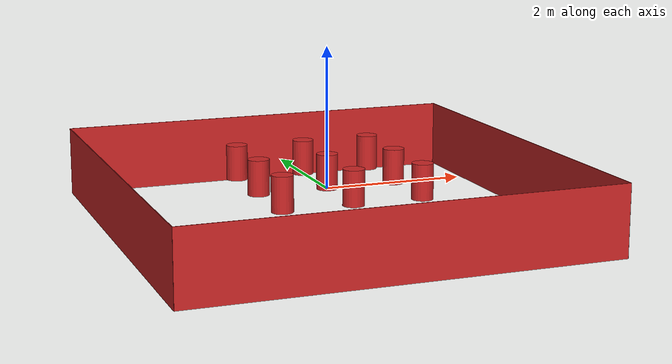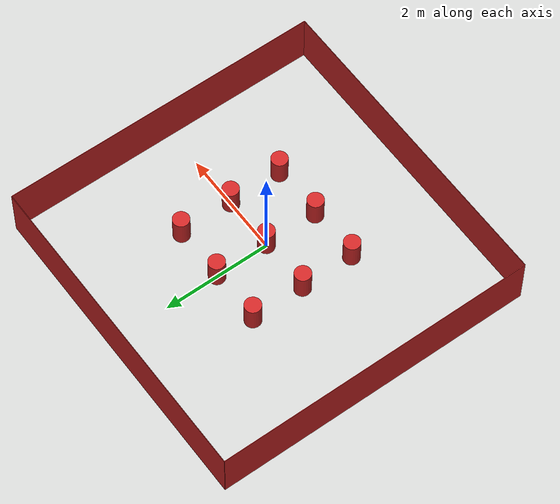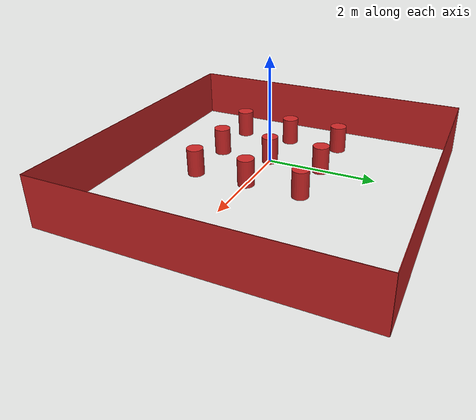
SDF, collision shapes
<sdf version='1.5'>
    <!-- Draw Circle -->
    <model name='ros_symbol'>
      <static>1</static>
      <link name='symbol'>

	<visual name="visual">
	  <geometry>
          <mesh>
            <uri>model://turtlebot3_world/meshes/aws_Refrigerator_01_visual.DAE</uri>
          </mesh>
         </geometry>
         <meta> <layer> 1 </layer></meta>
	</visual>

      	<visual name='goal_1'>
          <pose>2 0 0 0 0 0</pose>
          <geometry>
            <cylinder>
              <radius>0.5</radius>
              <length>0.01</length>
            </cylinder>
          </geometry>
          <material>
            <script>
              <uri>file://media/materials/scripts/gazebo.material</uri>
              <name>Gazebo/Red</name>
            </script>
          </material>
        </visual>

        <visual name='goal_2'>
          <pose>-0.1 -0.7 0 0 0 0</pose>
          <geometry>
            <cylinder>
              <radius>0.08</radius>
              <length>0.01</length>
            </cylinder>
          </geometry>
          <material>
            <script>
              <uri>file://media/materials/scripts/gazebo.material</uri>
              <name>Gazebo/Red</name>
            </script>
          </material>
        </visual>

        <visual name='goal_3'>
          <pose>-1 -1 0 0 0 0</pose>
          <geometry>
            <cylinder>
              <radius>0.08</radius>
              <length>0.01</length>
            </cylinder>
          </geometry>
          <material>
            <script>
              <uri>file://media/materials/scripts/gazebo.material</uri>
              <name>Gazebo/Red</name>
            </script>
          </material>
        </visual>

        <collision name='obs_1'>
          <pose>-1 -1 0.25 0 0 0</pose>
          <geometry>
            <cylinder>
              <radius>0.15</radius>
              <length>0.5</length>
            </cylinder>
          </geometry>
          <max_contacts>10</max_contacts>
          <surface>
            <bounce/>
            <friction>
              <ode/>
            </friction>
            <contact>
              <ode/>
            </contact>
          </surface>
        </collision>

        <visual name='obs_1'>
          <pose>-1 -1 0.25 0 0 0</pose>
          <geometry>
            <cylinder>
              <radius>0.15</radius>
              <length>0.5</length>
            </cylinder>
          </geometry>
          <material>
            <script>
              <uri>file://media/materials/scripts/gazebo.material</uri>
              <name>Gazebo/White</name>
            </script>
          </material>
        </visual>

        <collision name='obs_2'>
          <pose>-1 0 0.25 0 0 0</pose>
          <geometry>
            <cylinder>
              <radius>0.15</radius>
              <length>0.5</length>
            </cylinder>
          </geometry>
          <max_contacts>10</max_contacts>
          <surface>
            <bounce/>
            <friction>
              <ode/>
            </friction>
            <contact>
              <ode/>
            </contact>
          </surface>
        </collision>

        <visual name='obs_2'>
          <pose>-1 0 0.25 0 0 0</pose>
          <geometry>
            <cylinder>
              <radius>0.15</radius>
              <length>0.5</length>
            </cylinder>
          </geometry>
          <material>
            <script>
              <uri>file://media/materials/scripts/gazebo.material</uri>
              <name>Gazebo/White</name>
            </script>
          </material>
        </visual>

        <collision name='obs_3'>
          <pose>-1 1 0.25 0 0 0</pose>
          <geometry>
            <cylinder>
              <radius>0.15</radius>
              <length>0.5</length>
            </cylinder>
          </geometry>
          <max_contacts>10</max_contacts>
          <surface>
            <bounce/>
            <friction>
              <ode/>
            </friction>
            <contact>
              <ode/>
            </contact>
          </surface>
        </collision>

        <visual name='obs_3'>
          <pose>-1 1 0.25 0 0 0</pose>
          <geometry>
            <cylinder>
              <radius>0.15</radius>
              <length>0.5</length>
            </cylinder>
          </geometry>
          <material>
            <script>
              <uri>file://media/materials/scripts/gazebo.material</uri>
              <name>Gazebo/White</name>
            </script>
          </material>
        </visual>

        <collision name='obs_4'>
          <pose>0 -1 0.25 0 0 0</pose>
          <geometry>
            <cylinder>
              <radius>0.15</radius>
              <length>0.5</length>
            </cylinder>
          </geometry>
          <max_contacts>10</max_contacts>
          <surface>
            <bounce/>
            <friction>
              <ode/>
            </friction>
            <contact>
              <ode/>
            </contact>
          </surface>
        </collision>

        <visual name='obs_4'>
          <pose>0 -1 0.25 0 0 0</pose>
          <geometry>
            <cylinder>
              <radius>0.15</radius>
              <length>0.5</length>
            </cylinder>
          </geometry>
          <material>
            <script>
              <uri>file://media/materials/scripts/gazebo.material</uri>
              <name>Gazebo/White</name>
            </script>
          </material>
        </visual>

        <collision name='obs_5'>
          <pose>0 0 0.25 0 0 0</pose>
          <geometry>
            <cylinder>
              <radius>0.15</radius>
              <length>0.5</length>
            </cylinder>
          </geometry>
          <max_contacts>10</max_contacts>
          <surface>
            <bounce/>
            <friction>
              <ode/>
            </friction>
            <contact>
              <ode/>
            </contact>
          </surface>
        </collision>

        <visual name='obs_5'>
          <pose>0 0 0.25 0 0 0</pose>
          <geometry>
            <cylinder>
              <radius>0.15</radius>
              <length>0.5</length>
            </cylinder>
          </geometry>
          <material>
            <script>
              <uri>file://media/materials/scripts/gazebo.material</uri>
              <name>Gazebo/White</name>
            </script>
          </material>
        </visual>

        <collision name='obs_6'>
          <pose>0 1 0.25 0 0 0</pose>
          <geometry>
            <cylinder>
              <radius>0.15</radius>
              <length>0.5</length>
            </cylinder>
          </geometry>
          <max_contacts>10</max_contacts>
          <surface>
            <bounce/>
            <friction>
              <ode/>
            </friction>
            <contact>
              <ode/>
            </contact>
          </surface>
        </collision>

        <visual name='obs_6'>
          <pose>0 1 0.25 0 0 0</pose>
          <geometry>
            <cylinder>
              <radius>0.15</radius>
              <length>0.5</length>
            </cylinder>
          </geometry>
          <material>
            <script>
              <uri>file://media/materials/scripts/gazebo.material</uri>
              <name>Gazebo/White</name>
            </script>
          </material>
        </visual>

        <collision name='obs_7'>
          <pose>1 -1 0.25 0 0 0</pose>
          <geometry>
            <cylinder>
              <radius>0.15</radius>
              <length>0.5</length>
            </cylinder>
          </geometry>
          <max_contacts>10</max_contacts>
          <surface>
            <bounce/>
            <friction>
              <ode/>
            </friction>
            <contact>
              <ode/>
            </contact>
          </surface>
        </collision>

        <visual name='obs_7'>
          <pose>1 -1 0.25 0 0 0</pose>
          <geometry>
            <cylinder>
              <radius>0.15</radius>
              <length>0.5</length>
            </cylinder>
          </geometry>
          <material>
            <script>
              <uri>file://media/materials/scripts/gazebo.material</uri>
              <name>Gazebo/White</name>
            </script>
          </material>
        </visual>

        <collision name='obs_8'>
          <pose>1 0 0.25 0 0 0</pose>
          <geometry>
            <cylinder>
              <radius>0.15</radius>
              <length>0.5</length>
            </cylinder>
          </geometry>
          <max_contacts>10</max_contacts>
          <surface>
            <bounce/>
            <friction>
              <ode/>
            </friction>
            <contact>
              <ode/>
            </contact>
          </surface>
        </collision>

        <visual name='obs_8'>
          <pose>1 0 0.25 0 0 0</pose>
          <geometry>
            <cylinder>
              <radius>0.15</radius>
              <length>0.5</length>
            </cylinder>
          </geometry>
          <material>
            <script>
              <uri>file://media/materials/scripts/gazebo.material</uri>
              <name>Gazebo/White</name>
            </script>
          </material>
        </visual>

        <collision name='obs_9'>
          <pose>1 1 0.25 0 0 0</pose>
          <geometry>
            <cylinder>
              <radius>0.15</radius>
              <length>0.5</length>
            </cylinder>
          </geometry>
          <max_contacts>10</max_contacts>
          <surface>
            <bounce/>
            <friction>
              <ode/>
            </friction>
            <contact>
              <ode/>
            </contact>
          </surface>
        </collision>

        <visual name='obs_9'>
          <pose>1 1 0.25 0 0 0</pose>
          <geometry>
            <cylinder>
              <radius>0.15</radius>
              <length>0.5</length>
            </cylinder>
          </geometry>
          <material>
            <script>
              <uri>file://media/materials/scripts/gazebo.material</uri>
              <name>Gazebo/White</name>
            </script>
          </material>
        </visual>

	<!-- Draw Walls -->
      	<collision name="wall_1">
      	<pose>3 0 0 0 0 0</pose>
        <geometry>
          <box>
            <size>0.01 6.0 1.0</size>
          </box>
        </geometry>
        <max_contacts>10</max_contacts>
          <surface>
            <bounce/>
            <friction>
              <ode/>
            </friction>
            <contact>
              <ode/>
            </contact>
          </surface>
      </collision>

      <visual name="wall_1">
      <pose>3 0 0 0 0 0</pose>
        <geometry>
          <box>
            <size>0.01 6.0 1.0</size>
          </box>
        </geometry>
        <material>
            <script>
              <uri>file://media/materials/scripts/gazebo.material</uri>
              <name>Gazebo/White</name>
            </script>
          </material>
      </visual>

      <collision name="wall_2">
      	<pose>-3 0 0 0 0 0</pose>
        <geometry>
          <box>
            <size>0.01 6.0 1.0</size>
          </box>
        </geometry>
        <max_contacts>10</max_contacts>
          <surface>
            <bounce/>
            <friction>
              <ode/>
            </friction>
            <contact>
              <ode/>
            </contact>
          </surface>
      </collision>

      <visual name="wall_2">
      	<pose>-3 0 0 0 0 0</pose>
        <geometry>
          <box>
            <size>0.01 6.0 1.0</size>
          </box>
        </geometry>
        <material>
            <script>
              <uri>file://media/materials/scripts/gazebo.material</uri>
              <name>Gazebo/White</name>
            </script>
        </material>
      </visual>

      <collision name="wall_3">
      	<pose>0 3 0 0 0 0</pose>
        <geometry>
          <box>
            <size>6.0 0.01 1.0</size>
          </box>
        </geometry>
        <max_contacts>10</max_contacts>
          <surface>
            <bounce/>
            <friction>
              <ode/>
            </friction>
            <contact>
              <ode/>
            </contact>
          </surface>
      </collision>

      <visual name="wall_3">
      	<pose>0 3 0 0 0 0</pose>
        <geometry>
          <box>
            <size>6.0 0.01 1.0</size>
          </box>
        </geometry>
        <material>
            <script>
              <uri>file://media/materials/scripts/gazebo.material</uri>
              <name>Gazebo/White</name>
            </script>
        </material>
      </visual>

      <collision name="wall_4">
      	<pose>0 -3 0 0 0 0</pose>
        <geometry>
          <box>
            <size>6.0 0.01 1.0</size>
          </box>
        </geometry>
        <max_contacts>10</max_contacts>
          <surface>
            <bounce/>
            <friction>
              <ode/>
            </friction>
            <contact>
              <ode/>
            </contact>
          </surface>
      </collision>

      <visual name="wall_4">
      	<pose>0 -3 0 0 0 0</pose>
        <geometry>
          <box>
            <size>6.0 0.01 1.0</size>
          </box>
        </geometry>
        <material>
            <script>
              <uri>file://media/materials/scripts/gazebo.material</uri>
              <name>Gazebo/White</name>
            </script>
        </material>
      </visual>

    </link>
  </model>
</sdf>
